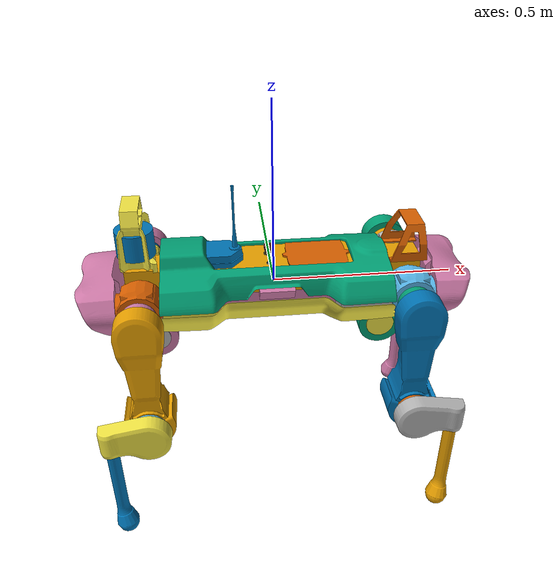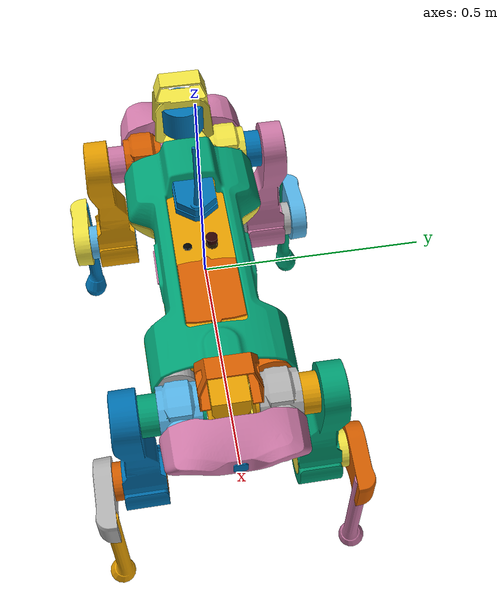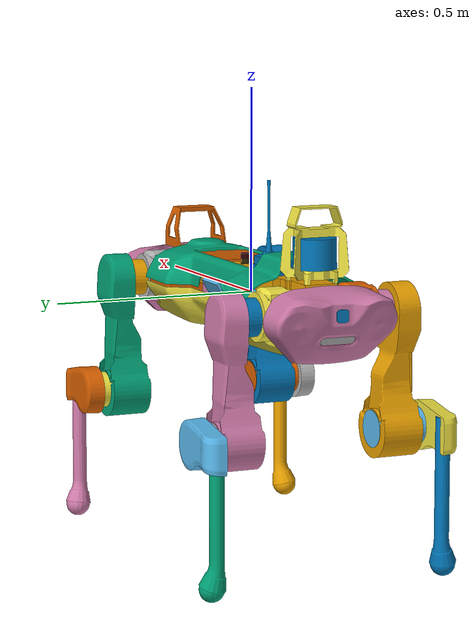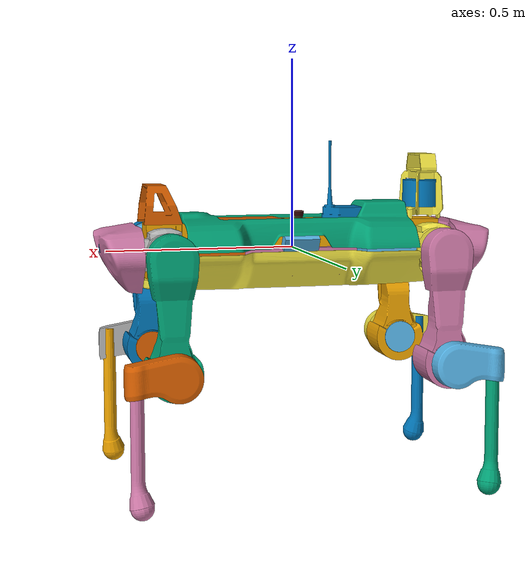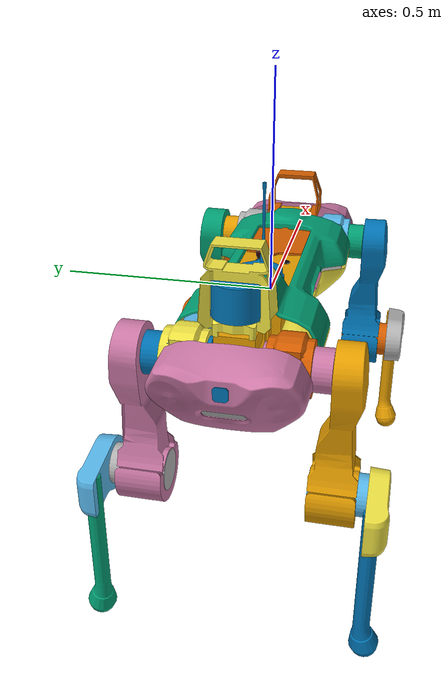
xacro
<?xml version="1.0"?>
<robot xmlns:xacro="http://www.ros.org/wiki/xacro"  name="anymal">

    <xacro:arg name="remove_shank_collisions" default="False"/>
    <xacro:property name="remove_shank_collisions" default="$(arg remove_shank_collisions)"/>

    <xacro:include filename="anymal.urdf.xacro" />
    <xacro:include filename="anymal_gazebo.xacro" />
    <xacro:include filename="materials.xacro" />
    <xacro:include filename="inertial_macros.xacro" />
    <xacro:include filename="lidar.xacro" />

</robot>

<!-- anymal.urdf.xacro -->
<!--   Copyright 2020 ANYbotics, https://www.anybotics.com                               -->
<!-- This file contains the description of the ANYmal C robot. -->
<robot xmlns:xacro="http://www.ros.org/wiki/xacro" name='anymal'>
    <!-- Base link -->
    <link name="base">
        <visual>
            <origin rpy="0 0 0" xyz="0 0 0"/>
            <geometry>
                <mesh filename="file://$(find anymal_c_simple_description)/meshes/base.dae" scale="1.0 1.0 1.0"/>
            </geometry>
        </visual>
        <collision>
            <origin rpy="0 0 0" xyz="0 0 0"/>
            <geometry>
                <box size="0.58 0.14 0.18"/>
            </geometry>
        </collision>
        <collision>
            <origin rpy="0 1.57079632679 0" xyz="0.2175 0.07 0"/>
            <geometry>
                <cylinder length="0.145" radius="0.09"/>
            </geometry>
        </collision>
        <collision>
            <origin rpy="0 1.57079632679 0" xyz="-0.2175 0.07 0"/>
            <geometry>
                <cylinder length="0.145" radius="0.09"/>
            </geometry>
        </collision>
        <collision>
            <origin rpy="0 1.57079632679 0" xyz="0.2175 -0.07 0"/>
            <geometry>
                <cylinder length="0.145" radius="0.09"/>
            </geometry>
        </collision>
        <collision>
            <origin rpy="0 1.57079632679 0" xyz="-0.2175 -0.07 0"/>
            <geometry>
                <cylinder length="0.145" radius="0.09"/>
            </geometry>
        </collision>
        <!-- Shell self filtering -->
        <self_filter>
            <origin rpy="0 0 0" xyz="0 0 0"/>
            <geometry>
                <box size="1.05 0.5 0.5"/>
            </geometry>
        </self_filter>
    </link>
    <!-- Fixed joint to add dummy inertia link -->
    <joint name="base_to_base_inertia" type="fixed">
        <parent link="base"/>
        <child link="base_inertia"/>
        <origin rpy="0 0 0" xyz="0 0 0"/>
    </joint>
    <!-- Dummy inertia link, because KDL cannot have inertia on the base link -->
    <link name="base_inertia">
        <inertial>
            <origin rpy="0 0 0" xyz="-0.018 -0.002 0.024"/>
            <mass value="6.222"/>
            <inertia ixx="0.017938806" ixy="0.00387963" ixz="0.001500772" iyy="0.370887745" iyz="6.8963e-05" izz="0.372497653"/>
        </inertial>
    </link>
    <!-- Fixed joint base topshell -->
    <joint name="base_top_shell" type="fixed">
        <parent link="base"/>
        <child link="top_shell"/>
        <origin rpy="0 0 0" xyz="0 0 0"/>
    </joint>
    <!-- Top shell link -->
    <link name="top_shell">
        <visual>
            <origin rpy="0 0 0" xyz="0 0 0"/>
            <geometry>
                <mesh filename="file://$(find anymal_c_simple_description)/meshes/top_shell.dae" scale="1.0 1.0 1.0"/>
            </geometry>
        </visual>
        <inertial>
            <origin rpy="0 0 0" xyz="-0.00777 -0.00013 0.06523"/>
            <mass value="0.534"/>
            <inertia ixx="0.00664789486" ixy="1.247923e-05" ixz="0.00053990097" iyy="0.02587392411" iyz="3.7614e-07" izz="0.03152303792"/>
        </inertial>
    </link>
    <!-- Fixed joint base topshell -->
    <joint name="base_bottom_shell" type="fixed">
        <parent link="base"/>
        <child link="bottom_shell"/>
        <origin rpy="0 0 0" xyz="0 0 0"/>
    </joint>
    <!-- Bottom shell link -->
    <link name="bottom_shell">
        <visual>
            <origin rpy="0 0 0" xyz="0 0 0"/>
            <geometry>
                <mesh filename="file://$(find anymal_c_simple_description)/meshes/bottom_shell.dae" scale="1.0 1.0 1.0"/>
            </geometry>
        </visual>
        <inertial>
            <origin rpy="0 0 0" xyz="-0.00333 1e-05 -0.07705"/>
            <mass value="1.15"/>
            <inertia ixx="0.00927353677" ixy="5.41222e-06" ixz="9.039821e-05" iyy="0.06134388239" iyz="2.3042e-07" izz="0.06853531465"/>
        </inertial>
    </link>
    <!-- Fixed joint base remote -->
    <joint name="base_remote" type="fixed">
        <parent link="base"/>
        <child link="remote"/>
        <origin rpy="0 0 0" xyz="0 0 0"/>
    </joint>
    <!-- Remote link -->
    <link name="remote">
        <visual>
            <origin rpy="0 0 0" xyz="0 0 0"/>
            <geometry>
                <mesh filename="file://$(find anymal_c_simple_description)/meshes/remote.dae" scale="1.0 1.0 1.0"/>
            </geometry>
        </visual>
        <inertial>
            <origin rpy="0 0 0" xyz="-0.171 0.002 0.096"/>
            <mass value="0.3262"/>
            <inertia ixx="0.000528486" ixy="4.547e-05" ixz="1.10327e-05" iyy="0.001165035" iyz="7.4e-07" izz="0.00124026"/>
        </inertial>
    </link>
    <!-- Fixed joint base handle -->
    <joint name="base_handle" type="fixed">
        <parent link="base"/>
        <child link="handle"/>
        <origin rpy="0 0 0" xyz="0 0 0"/>
    </joint>
    <!-- Handle link -->
    <link name="handle">
        <visual>
            <origin rpy="0 0 0" xyz="0 0 0"/>
            <geometry>
                <mesh filename="file://$(find anymal_c_simple_description)/meshes/handle.dae" scale="1.0 1.0 1.0"/>
            </geometry>
        </visual>
        <inertial>
            <origin rpy="0 0 0" xyz="0.37801 0.0 0.1372"/>
            <mass value="0.314"/>
            <inertia ixx="0.001525739" ixy="0.0" ixz="6.272e-05" iyy="0.00071584" iyz="1e-09" izz="0.001164779"/>
        </inertial>
    </link>
    <!-- Fixed joint base face -->
    <joint name="base_face_front" type="fixed">
        <parent link="base"/>
        <child link="face_front"/>
        <origin rpy="0 0 -0.0" xyz="0.4145 0 0"/>
    </joint>
    <!-- Shell link -->
    <link name="face_front">
        <visual>
            <origin rpy="0 0 0" xyz="0 0 0"/>
            <geometry>
                <mesh filename="file://$(find anymal_c_simple_description)/meshes/face.dae" scale="1.0 1.0 1.0"/>
            </geometry>
        </visual>
        <collision>
            <origin rpy="0 0 0" xyz="0.055 0 0"/>
            <geometry>
                <box size="0.11 0.14 0.18"/>
            </geometry>
        </collision>
        <collision>
            <origin rpy="0 1.57079632679 0" xyz="0.055 0.07 0"/>
            <geometry>
                <cylinder length="0.11" radius="0.09"/>
            </geometry>
        </collision>
        <collision>
            <origin rpy="0 1.57079632679 0" xyz="0.055 -0.07 0"/>
            <geometry>
                <cylinder length="0.11" radius="0.09"/>
            </geometry>
        </collision>
        <inertial>
            <origin rpy="0 0 0" xyz="0.042 -0.001 0.004"/>
            <mass value="0.73"/>
            <inertia ixx="0.005238611" ixy="1.7609e-05" ixz="7.2167e-05" iyy="0.002643098" iyz="1.9548e-05" izz="0.004325938"/>
        </inertial>
    </link>
    <!-- Camera joint -->
    <!-- Is located between the two back screw holes at ground level. -->
    <joint name="face_front_to_depth_camera_front_camera" type="fixed">
        <parent link="face_front"/>
        <child link="depth_camera_front_camera"/>
        <origin rpy="0.0 0.523598775598 0" xyz="0.04715 0.0 -0.0292"/>
    </joint>
    <!-- Camera link -->
    <link name="depth_camera_front_camera">
        <visual>
            <origin rpy="0 0 0" xyz="0.0 0.0 0.0"/>
            <geometry>
                <mesh filename="file://$(find anymal_c_simple_description)/meshes/depth_camera.dae" scale="1.0 1.0 1.0"/>
            </geometry>
        </visual>
        <inertial>
            <origin rpy="0 0 0" xyz="-0.021 -0.002 0.025"/>
            <mass value="0.16043"/>
            <inertia ixx="0.000637051" ixy="0.000484569" ixz="0.000424211" iyy="0.000929402" iyz="5.138e-06" izz="0.000484569"/>
        </inertial>
    </link>
    <!-- Camera parent joint -->
    <!-- Frame lies on the left ir camera according to any_realsense2_camera urdf. -->
    <joint name="depth_camera_front_camera_to_camera_parent" type="fixed">
        <parent link="depth_camera_front_camera"/>
        <child link="depth_camera_front_camera_parent"/>
        <origin rpy="0.0 0.0 0.0" xyz="0.0255 0.0175 0.0"/>
    </joint>
    <!-- Camera parent link -->
    <link name="depth_camera_front_camera_parent"/>
    <!-- Depth optical frame joint -->
    <joint name="depth_camera_front_camera_parent_to_depth_optical_frame" type="fixed">
        <parent link="depth_camera_front_camera_parent"/>
        <child link="depth_camera_front_depth_optical_frame"/>
        <origin rpy="-1.57079632679 0.0 -1.57079632679" xyz="0.0 0.0 0.0"/>
    </joint>
    <!-- Depth optical frame link -->
    <link name="depth_camera_front_depth_optical_frame"/>
    <!-- Camera color frame joint -->
    <joint name="depth_camera_front_camera_parent_to_color_frame" type="fixed">
        <parent link="depth_camera_front_camera_parent"/>
        <child link="depth_camera_front_color_frame"/>
        <origin rpy="0 0 0" xyz="0 0.015 0"/>
    </joint>
    <!-- Camera color frame link -->
    <link name="depth_camera_front_color_frame"/>
    <!-- Camera color optical joint -->
    <joint name="depth_camera_front_color_frame_to_color_optical_frame" type="fixed">
        <parent link="depth_camera_front_color_frame"/>
        <child link="depth_camera_front_color_optical_frame"/>
        <origin rpy="-1.57079632679 0.0 -1.57079632679" xyz="0.0 0.0 0.0"/>
    </joint>
    <!-- Camera color optical link -->
    <link name="depth_camera_front_color_optical_frame"/>
    <!-- Camera joint -->
    <!-- Is located in the center of the mounting points. -->
    <joint name="face_front_to_wide_angle_camera_front_camera" type="fixed">
        <parent link="face_front"/>
        <child link="wide_angle_camera_front_camera"/>
        <origin rpy="0 0 0" xyz="0.09850 0.0 0.01497"/>
    </joint>
    <!-- Camera link -->
    <link name="wide_angle_camera_front_camera">
        <visual>
            <origin rpy="0 0 0" xyz="0.0 0.0 0.0"/>
            <geometry>
                <mesh filename="file://$(find anymal_c_simple_description)/meshes/wide_angle_camera.dae" scale="1.0 1.0 1.0"/>
            </geometry>
        </visual>
        <inertial>
            <origin rpy="0 0 0" xyz="-0.053 -0.001 0.025"/>
            <mass value="0.287"/>
            <inertia ixx="0.000559232" ixy="1.6875e-05" ixz="0.000423761" iyy="0.000946504" iyz="1.3234e-07" izz="0.000493052"/>
        </inertial>
    </link>
    <!-- Camera parent joint -->
    <joint name="wide_angle_camera_front_camera_to_camera_parent" type="fixed">
        <parent link="wide_angle_camera_front_camera"/>
        <child link="wide_angle_camera_front_camera_parent"/>
        <origin rpy="-1.57079632679 0.0 -1.57079632679" xyz="0.0 0.0 0.0"/>
    </joint>
    <!-- Camera parent link -->
    <link name="wide_angle_camera_front_camera_parent"/>
    <!-- Fixed joint base face -->
    <joint name="base_face_rear" type="fixed">
        <parent link="base"/>
        <child link="face_rear"/>
        <origin rpy="0 0 3.14159265359" xyz="-0.4145 0 0"/>
    </joint>
    <!-- Shell link -->
    <link name="face_rear">
        <visual>
            <origin rpy="0 0 0" xyz="0 0 0"/>
            <geometry>
                <mesh filename="file://$(find anymal_c_simple_description)/meshes/face.dae" scale="1.0 1.0 1.0"/>
            </geometry>
        </visual>
        <collision>
            <origin rpy="0 0 0" xyz="0.055 0 0"/>
            <geometry>
                <box size="0.11 0.14 0.18"/>
            </geometry>
        </collision>
        <collision>
            <origin rpy="0 1.57079632679 0" xyz="0.055 0.07 0"/>
            <geometry>
                <cylinder length="0.11" radius="0.09"/>
            </geometry>
        </collision>
        <collision>
            <origin rpy="0 1.57079632679 0" xyz="0.055 -0.07 0"/>
            <geometry>
                <cylinder length="0.11" radius="0.09"/>
            </geometry>
        </collision>
        <inertial>
            <origin rpy="0 0 0" xyz="0.042 -0.001 0.004"/>
            <mass value="0.73"/>
            <inertia ixx="0.005238611" ixy="1.7609e-05" ixz="7.2167e-05" iyy="0.002643098" iyz="1.9548e-05" izz="0.004325938"/>
        </inertial>
    </link>
    <!-- Camera joint -->
    <!-- Is located between the two back screw holes at ground level. -->
    <joint name="face_rear_to_depth_camera_rear_camera" type="fixed">
        <parent link="face_rear"/>
        <child link="depth_camera_rear_camera"/>
        <origin rpy="0.0 0.523598775598 0" xyz="0.04715 0.0 -0.0292"/>
    </joint>
    <!-- Camera link -->
    <link name="depth_camera_rear_camera">
        <visual>
            <origin rpy="0 0 0" xyz="0.0 0.0 0.0"/>
            <geometry>
                <mesh filename="file://$(find anymal_c_simple_description)/meshes/depth_camera.dae" scale="1.0 1.0 1.0"/>
            </geometry>
        </visual>
        <inertial>
            <origin rpy="0 0 0" xyz="-0.021 -0.002 0.025"/>
            <mass value="0.16043"/>
            <inertia ixx="0.000637051" ixy="0.000484569" ixz="0.000424211" iyy="0.000929402" iyz="5.138e-06" izz="0.000484569"/>
        </inertial>
    </link>
    <!-- Camera parent joint -->
    <!-- Frame lies on the left ir camera according to any_realsense2_camera urdf. -->
    <joint name="depth_camera_rear_camera_to_camera_parent" type="fixed">
        <parent link="depth_camera_rear_camera"/>
        <child link="depth_camera_rear_camera_parent"/>
        <origin rpy="0.0 0.0 0.0" xyz="0.0255 0.0175 0.0"/>
    </joint>
    <!-- Camera parent link -->
    <link name="depth_camera_rear_camera_parent"/>
    <!-- Depth optical frame joint -->
    <joint name="depth_camera_rear_camera_parent_to_depth_optical_frame" type="fixed">
        <parent link="depth_camera_rear_camera_parent"/>
        <child link="depth_camera_rear_depth_optical_frame"/>
        <origin rpy="-1.57079632679 0.0 -1.57079632679" xyz="0.0 0.0 0.0"/>
    </joint>
    <!-- Depth optical frame link -->
    <link name="depth_camera_rear_depth_optical_frame"/>
    <!-- Camera color frame joint -->
    <joint name="depth_camera_rear_camera_parent_to_color_frame" type="fixed">
        <parent link="depth_camera_rear_camera_parent"/>
        <child link="depth_camera_rear_color_frame"/>
        <origin rpy="0 0 0" xyz="0 0.015 0"/>
    </joint>
    <!-- Camera color frame link -->
    <link name="depth_camera_rear_color_frame"/>
    <!-- Camera color optical joint -->
    <joint name="depth_camera_rear_color_frame_to_color_optical_frame" type="fixed">
        <parent link="depth_camera_rear_color_frame"/>
        <child link="depth_camera_rear_color_optical_frame"/>
        <origin rpy="-1.57079632679 0.0 -1.57079632679" xyz="0.0 0.0 0.0"/>
    </joint>
    <!-- Camera color optical link -->
    <link name="depth_camera_rear_color_optical_frame"/>
    <!-- Camera joint -->
    <!-- Is located in the center of the mounting points. -->
    <joint name="face_rear_to_wide_angle_camera_rear_camera" type="fixed">
        <parent link="face_rear"/>
        <child link="wide_angle_camera_rear_camera"/>
        <origin rpy="0 0 0" xyz="0.09850 0.0 0.01497"/>
    </joint>
    <!-- Camera link -->
    <link name="wide_angle_camera_rear_camera">
        <visual>
            <origin rpy="0 0 0" xyz="0.0 0.0 0.0"/>
            <geometry>
                <mesh filename="file://$(find anymal_c_simple_description)/meshes/wide_angle_camera.dae" scale="1.0 1.0 1.0"/>
            </geometry>
        </visual>
        <inertial>
            <origin rpy="0 0 0" xyz="-0.053 -0.001 0.025"/>
            <mass value="0.287"/>
            <inertia ixx="0.000559232" ixy="1.6875e-05" ixz="0.000423761" iyy="0.000946504" iyz="1.3234e-07" izz="0.000493052"/>
        </inertial>
    </link>
    <!-- Camera parent joint -->
    <joint name="wide_angle_camera_rear_camera_to_camera_parent" type="fixed">
        <parent link="wide_angle_camera_rear_camera"/>
        <child link="wide_angle_camera_rear_camera_parent"/>
        <origin rpy="-1.57079632679 0.0 -1.57079632679" xyz="0.0 0.0 0.0"/>
    </joint>
    <!-- Camera parent link -->
    <link name="wide_angle_camera_rear_camera_parent"/>
    <!-- Fixed joint base battery -->
    <joint name="base_battery" type="fixed">
        <parent link="base"/>
        <child link="battery"/>
        <origin rpy="0 0 0" xyz="0 0 0"/>
    </joint>
    <!-- Shell link -->
    <link name="battery">
        <visual>
            <origin rpy="0 0 0" xyz="0 0 0"/>
            <geometry>
                <mesh filename="file://$(find anymal_c_simple_description)/meshes/battery.dae" scale="1.0 1.0 1.0"/>
            </geometry>
        </visual>
        <inertial>
            <origin rpy="0 0 0" xyz="-0.00067 -0.00023 -0.03362"/>
            <mass value="5.53425"/>
            <inertia ixx="0.00749474794" ixy="0.00016686282" ixz="7.82763e-05" iyy="0.0722338913" iyz="1.42902e-06" izz="0.07482717535"/>
        </inertial>
    </link>
    <!-- Fixed joint to add docking  -->
    <joint name="base_to_docking_hatch_cover" type="fixed">
        <parent link="base"/>
        <child link="docking_hatch_cover"/>
        <origin rpy="0 0 0" xyz="0.343 0.0 -0.07"/>
    </joint>
    <!-- Hatch cover link -->
    <link name="docking_hatch_cover">
        <!--  TODO(fgiraldez): add visual    -->
        <inertial>
            <origin rpy="0 0 0" xyz="-0.003 0.0 0.005"/>
            <mass value="0.065"/>
            <inertia ixx="0.00063283" ixy="0.0" ixz="3.45e-07" iyy="0.00110971" iyz="0.0" izz="0.00171883"/>
        </inertial>
    </link>
    <link name="imu_link">
        <visual>
            <origin rpy="0 0 0" xyz="0 0 0.005"/>
            <geometry>
                <box size="0.024 0.024 0.01"/>
            </geometry>
        </visual>
        <collision>
            <origin rpy="0 0 0" xyz="0 0 0.005"/>
            <geometry>
                <box size="0.024 0.024 0.01"/>
            </geometry>
        </collision>
        <inertial>
            <mass value="0.01"/>
            <origin xyz="0 0 0"/>
            <inertia ixx="5.63333333333e-07" ixy="0.0" ixz="0.0" iyy="9.6e-07" iyz="0.0" izz="5.63333333333e-07"/>
        </inertial>
    </link>
    <joint name="imu_joint" type="fixed">
        <parent link="base"/>
        <child link="imu_link"/>
        <origin rpy="0.0 0.0 1.57079632679" xyz="0.2488 0.00835 0.04628"/>
    </joint>
    <!-- Camera joint -->
    <!-- Is located between the two back screw holes at ground level. -->
    <joint name="base_to_depth_camera_left_camera" type="fixed">
        <parent link="base"/>
        <child link="depth_camera_left_camera"/>
        <origin rpy="0.0 0.523598775598 1.57079632679" xyz="0.0 0.07646 0.02905"/>
    </joint>
    <!-- Camera link -->
    <link name="depth_camera_left_camera">
        <visual>
            <origin rpy="0 0 0" xyz="0.0 0.0 0.0"/>
            <geometry>
                <mesh filename="file://$(find anymal_c_simple_description)/meshes/depth_camera.dae" scale="1.0 1.0 1.0"/>
            </geometry>
        </visual>
        <inertial>
            <origin rpy="0 0 0" xyz="-0.021 -0.002 0.025"/>
            <mass value="0.16043"/>
            <inertia ixx="0.000637051" ixy="0.000484569" ixz="0.000424211" iyy="0.000929402" iyz="5.138e-06" izz="0.000484569"/>
        </inertial>
    </link>
    <!-- Camera parent joint -->
    <!-- Frame lies on the left ir camera according to any_realsense2_camera urdf. -->
    <joint name="depth_camera_left_camera_to_camera_parent" type="fixed">
        <parent link="depth_camera_left_camera"/>
        <child link="depth_camera_left_camera_parent"/>
        <origin rpy="0.0 0.0 0.0" xyz="0.0255 0.0175 0.0"/>
    </joint>
    <!-- Camera parent link -->
    <link name="depth_camera_left_camera_parent"/>
    <!-- Depth optical frame joint -->
    <joint name="depth_camera_left_camera_parent_to_depth_optical_frame" type="fixed">
        <parent link="depth_camera_left_camera_parent"/>
        <child link="depth_camera_left_depth_optical_frame"/>
        <origin rpy="-1.57079632679 0.0 -1.57079632679" xyz="0.0 0.0 0.0"/>
    </joint>
    <!-- Depth optical frame link -->
    <link name="depth_camera_left_depth_optical_frame"/>
    <!-- Camera color frame joint -->
    <joint name="depth_camera_left_camera_parent_to_color_frame" type="fixed">
        <parent link="depth_camera_left_camera_parent"/>
        <child link="depth_camera_left_color_frame"/>
        <origin rpy="0 0 0" xyz="0 0.015 0"/>
    </joint>
    <!-- Camera color frame link -->
    <link name="depth_camera_left_color_frame"/>
    <!-- Camera color optical joint -->
    <joint name="depth_camera_left_color_frame_to_color_optical_frame" type="fixed">
        <parent link="depth_camera_left_color_frame"/>
        <child link="depth_camera_left_color_optical_frame"/>
        <origin rpy="-1.57079632679 0.0 -1.57079632679" xyz="0.0 0.0 0.0"/>
    </joint>
    <!-- Camera color optical link -->
    <link name="depth_camera_left_color_optical_frame"/>
    <!-- Camera joint -->
    <!-- Is located between the two back screw holes at ground level. -->
    <joint name="base_to_depth_camera_right_camera" type="fixed">
        <parent link="base"/>
        <child link="depth_camera_right_camera"/>
        <origin rpy="0.0 0.523598775598 -1.57079632679" xyz="0.0 -0.07646 0.02905"/>
    </joint>
    <!-- Camera link -->
    <link name="depth_camera_right_camera">
        <visual>
            <origin rpy="0 0 0" xyz="0.0 0.0 0.0"/>
            <geometry>
                <mesh filename="file://$(find anymal_c_simple_description)/meshes/depth_camera.dae" scale="1.0 1.0 1.0"/>
            </geometry>
        </visual>
        <inertial>
            <origin rpy="0 0 0" xyz="-0.021 -0.002 0.025"/>
            <mass value="0.16043"/>
            <inertia ixx="0.000637051" ixy="0.000484569" ixz="0.000424211" iyy="0.000929402" iyz="5.138e-06" izz="0.000484569"/>
        </inertial>
    </link>
    <!-- Camera parent joint -->
    <!-- Frame lies on the left ir camera according to any_realsense2_camera urdf. -->
    <joint name="depth_camera_right_camera_to_camera_parent" type="fixed">
        <parent link="depth_camera_right_camera"/>
        <child link="depth_camera_right_camera_parent"/>
        <origin rpy="0.0 0.0 0.0" xyz="0.0255 0.0175 0.0"/>
    </joint>
    <!-- Camera parent link -->
    <link name="depth_camera_right_camera_parent"/>
    <!-- Depth optical frame joint -->
    <joint name="depth_camera_right_camera_parent_to_depth_optical_frame" type="fixed">
        <parent link="depth_camera_right_camera_parent"/>
        <child link="depth_camera_right_depth_optical_frame"/>
        <origin rpy="-1.57079632679 0.0 -1.57079632679" xyz="0.0 0.0 0.0"/>
    </joint>
    <!-- Depth optical frame link -->
    <link name="depth_camera_right_depth_optical_frame"/>
    <!-- Camera color frame joint -->
    <joint name="depth_camera_right_camera_parent_to_color_frame" type="fixed">
        <parent link="depth_camera_right_camera_parent"/>
        <child link="depth_camera_right_color_frame"/>
        <origin rpy="0 0 0" xyz="0 0.015 0"/>
    </joint>
    <!-- Camera color frame link -->
    <link name="depth_camera_right_color_frame"/>
    <!-- Camera color optical joint -->
    <joint name="depth_camera_right_color_frame_to_color_optical_frame" type="fixed">
        <parent link="depth_camera_right_color_frame"/>
        <child link="depth_camera_right_color_optical_frame"/>
        <origin rpy="-1.57079632679 0.0 -1.57079632679" xyz="0.0 0.0 0.0"/>
    </joint>
    <!-- Camera color optical link -->
    <link name="depth_camera_right_color_optical_frame"/>
    <!-- parent to cage joint, located between mounting plate on trunk and the cage -->
    <joint name="base_to_lidar_cage" type="fixed">
        <parent link="base"/>
        <child link="lidar_cage"/>
        <origin rpy="0 0 0" xyz="-0.364 0.0 0.0735"/>
    </joint>
    <!-- Velodyne cage link -->
    <link name="lidar_cage">
        <visual>
            <origin rpy="0.0 0.0 0.0" xyz="0.0 0.0 0.0"/>
            <geometry>
                <mesh filename="file://$(find anymal_c_simple_description)/meshes/lidar_cage.dae" scale="1.0 1.0 1.0"/>
            </geometry>
        </visual>
        <collision>
            <origin rpy="0 0 0" xyz="0 0 0.06"/>
            <geometry>
                <cylinder length="0.12" radius="0.07"/>
            </geometry>
        </collision>
        <inertial>
            <origin rpy="0.0 0.0 0.0" xyz="0.002 0.0 0.099"/>
            <mass value="0.545"/>
            <inertia ixx="0.003156254" ixy="0.0" ixz="1.0992e-05" iyy="0.002357216" iyz="0.0" izz="0.001326455"/>
        </inertial>
    </link>
    <!-- parent to sensor joint -->
    <joint name="lidar_cage_to_lidar" type="fixed">
        <parent link="lidar_cage"/>
        <child link="lidar"/>
        <origin rpy="0.0 0.0 -1.57079632679" xyz="0.0 0.0 0.0687"/>
    </joint>
    <!-- Velodyne sensor link -->
    <link name="lidar">
        <inertial>
            <origin rpy="0.0 0.0 0.0" xyz="-0.012 0.001 -0.008"/>
            <mass value="0.695"/>
            <inertia ixx="0.000846765" ixy="6.9565e-05" ixz="0.00027111" iyy="0.001367583" iyz="5.8984e-05" izz="0.001363673"/>
        </inertial>
        <visual>
            <origin xyz="0 0 0"/>
            <geometry>
                <mesh filename="file://$(find anymal_c_simple_description)/meshes/lidar.dae"/>
            </geometry>
        </visual>
    </link>
    <!-- joint base HAA -->
    <joint name="base_LF_HAA" type="fixed">
        <parent link="base"/>
        <child link="LF_HAA"/>
        <origin rpy="2.61799387799 0 0.0" xyz="0.2999 0.104 0.0"/>
    </joint>
    <!-- Drive link -->
    <link name="LF_HAA">
        <visual>
            <origin rpy="0 0 0" xyz="0 0 0"/>
            <geometry>
                <mesh filename="file://$(find anymal_c_simple_description)/meshes/drive.dae" scale="1.0 1.0 1.0"/>
            </geometry>
        </visual>
        <inertial>
            <origin rpy="0 0 0" xyz="-0.063 7e-05 0.00046"/>
            <mass value="2.04"/>
            <inertia ixx="0.001053013" ixy="4.527e-05" ixz="8.855e-05" iyy="0.001805509" iyz="9.909e-05" izz="0.001765827"/>
        </inertial>
    </link>
    <!-- joint Drive output -->
    <joint name="LF_HAA_joint" type="revolute">
        <parent link="LF_HAA"/>
        <child link="LF_HIP"/>
        <origin rpy="0 0 0" xyz="0 0 0"/>
        <axis xyz="1 0 0"/>
        <limit effort="80.0" lower="-0.72" upper="0.49" velocity="7.5"/>
        <dynamics damping="0.0" friction="0.0"/>
    </joint>
    <!-- Drive output link -->
    <link name="LF_HIP">
        <inertial>
            <origin rpy="0 0 0" xyz="0 0 0"/>
            <mass value="0.001"/>
            <inertia ixx="0.000001" ixy="0.0" ixz="0.0" iyy="0.000001" iyz="0.0" izz="0.000001"/>
        </inertial>
    </link>
    <!-- joint HAA hip -->
    <joint name="LF_HIP_LF_hip_fixed" type="fixed">
        <parent link="LF_HIP"/>
        <child link="LF_hip_fixed"/>
        <origin rpy="-2.61799387799 0 0.0" xyz="0 0 0"/>
    </joint>
    <!-- Hip link -->
    <link name="LF_hip_fixed">
        <visual>
            <origin rpy="0 0 0.0" xyz="0 0 0"/>
            <geometry>
                <mesh filename="file://$(find anymal_c_simple_description)/meshes/hip_l.dae" scale="1.0 1.0 1.0"/>
            </geometry>
        </visual>
        <inertial>
            <origin rpy="0 0 0" xyz="0.048 0.008 -0.003"/>
            <mass value="0.74"/>
            <inertia ixx="0.001393106" ixy="8.4012e-05" ixz="2.3378e-05" iyy="0.003798579" iyz="7.1319e-05" izz="0.003897509"/>
        </inertial>
    </link>
    <!-- joint hip HFE -->
    <joint name="LF_hip_fixed_LF_HFE" type="fixed">
        <parent link="LF_hip_fixed"/>
        <child link="LF_HFE"/>
        <origin rpy="0 0 1.57079632679" xyz="0.0599 0.08381 0.0"/>
    </joint>
    <!-- Drive link -->
    <link name="LF_HFE">
        <visual>
            <origin rpy="0 0 0" xyz="0 0 0"/>
            <geometry>
                <mesh filename="file://$(find anymal_c_simple_description)/meshes/drive.dae" scale="1.0 1.0 1.0"/>
            </geometry>
        </visual>
        <collision>
            <origin rpy="0 1.57079632679 0" xyz="-0.07 0 0"/>
            <geometry>
                <cylinder length="0.14" radius="0.05"/>
            </geometry>
        </collision>
        <inertial>
            <origin rpy="0 0 0" xyz="-0.063 7e-05 0.00046"/>
            <mass value="2.04"/>
            <inertia ixx="0.001053013" ixy="4.527e-05" ixz="8.855e-05" iyy="0.001805509" iyz="9.909e-05" izz="0.001765827"/>
        </inertial>
    </link>
    <!-- joint Drive output -->
    <joint name="LF_HFE_joint" type="revolute">
        <parent link="LF_HFE"/>
        <child link="LF_THIGH"/>
        <origin rpy="0 0 0" xyz="0 0 0"/>
        <axis xyz="1 0 0"/>
        <limit effort="80.0" lower="-9.42477796077" upper="9.42477796077" velocity="7.5"/>
        <dynamics damping="0.0" friction="0.0"/>
    </joint>
    <!-- Drive output link -->
    <link name="LF_THIGH">
        <inertial>
            <origin rpy="0 0 0" xyz="0 0 0"/>
            <mass value="0.001"/>
            <inertia ixx="0.000001" ixy="0.0" ixz="0.0" iyy="0.000001" iyz="0.0" izz="0.000001"/>
        </inertial>
    </link>
    <!-- joint HFE thigh -->
    <joint name="LF_THIGH_LF_thigh_fixed" type="fixed">
        <parent link="LF_THIGH"/>
        <child link="LF_thigh_fixed"/>
        <origin rpy="0 0 -1.57079632679" xyz="0 0 0"/>
    </joint>
    <!-- Thigh link -->
    <link name="LF_thigh_fixed">
        <visual>
            <origin rpy="0 0 0.0" xyz="0 0 0"/>
            <geometry>
                <mesh filename="file://$(find anymal_c_simple_description)/meshes/thigh.dae" scale="1.0 1.0 1.0"/>
            </geometry>
        </visual>
        <!-- Thigh collision -->
        <collision>
            <origin rpy="1.57079632679 0 0" xyz="0 0.04 0"/>
            <geometry>
                <cylinder length="0.08" radius="0.065"/>
            </geometry>
        </collision>
        <collision>
            <origin rpy="0 0 0" xyz="0 0.03 -0.1413135"/>
            <geometry>
                <box size="0.075 0.06 0.282627"/>
            </geometry>
        </collision>
        <inertial>
            <origin rpy="0 0 0" xyz="0.0 0.018 -0.169"/>
            <mass value="1.03"/>
            <inertia ixx="0.018644469" ixy="5.2e-08" ixz="1.0157e-05" iyy="0.019312599" iyz="0.002520077" izz="0.002838361"/>
        </inertial>
    </link>
    <!-- joint thigh KFE -->
    <joint name="LF_thigh_fixed_LF_KFE" type="fixed">
        <parent link="LF_thigh_fixed"/>
        <child link="LF_KFE"/>
        <origin rpy="0 0 1.57079632679" xyz="0.0 0.1003 -0.285"/>
    </joint>
    <!-- Drive link -->
    <link name="LF_KFE">
        <visual>
            <origin rpy="0 0 0" xyz="0 0 0"/>
            <geometry>
                <mesh filename="file://$(find anymal_c_simple_description)/meshes/drive.dae" scale="1.0 1.0 1.0"/>
            </geometry>
        </visual>
        <collision>
            <origin rpy="0 1.57079632679 0" xyz="-0.07 0 0"/>
            <geometry>
                <cylinder length="0.14" radius="0.05"/>
            </geometry>
        </collision>
        <inertial>
            <origin rpy="0 0 0" xyz="-0.063 7e-05 0.00046"/>
            <mass value="2.04"/>
            <inertia ixx="0.001053013" ixy="4.527e-05" ixz="8.855e-05" iyy="0.001805509" iyz="9.909e-05" izz="0.001765827"/>
        </inertial>
    </link>
    <!-- joint Drive output -->
    <joint name="LF_KFE_joint" type="revolute">
        <parent link="LF_KFE"/>
        <child link="LF_SHANK"/>
        <origin rpy="0 0 0" xyz="0 0 0"/>
        <axis xyz="1 0 0"/>
        <limit effort="80.0" lower="-9.42477796077" upper="9.42477796077" velocity="7.5"/>
        <dynamics damping="0.0" friction="0.0"/>
    </joint>
    <!-- Drive output link -->
    <link name="LF_SHANK">
        <inertial>
            <origin rpy="0 0 0" xyz="0 0 0"/>
            <mass value="0.001"/>
            <inertia ixx="0.000001" ixy="0.0" ixz="0.0" iyy="0.000001" iyz="0.0" izz="0.000001"/>
        </inertial>
    </link>
    <!-- joint KFE shank -->
    <joint name="LF_shank_LF_shank_fixed" type="fixed">
        <parent link="LF_SHANK"/>
        <child link="LF_shank_fixed"/>
        <origin rpy="0 0 -1.57079632679" xyz="0 0 0"/>
    </joint>
    <!-- Shank link -->
    <link name="LF_shank_fixed">
        <visual>
            <origin rpy="0 0 0.0" xyz="0 0 0"/>
            <geometry>
                <mesh filename="file://$(find anymal_c_simple_description)/meshes/shank_l.dae" scale="1.0 1.0 1.0"/>
            </geometry>
        </visual>
        <!-- Shank collision -->
        <collision>
            <origin rpy="1.57079632679 0 0" xyz="0 0.02 0"/>
            <geometry>
                <cylinder length="0.04" radius="0.06"/>
            </geometry>
        </collision>
        <collision>
            <origin rpy="1.57079632679 0 0" xyz="0.057499 0.02 0"/>
            <geometry>
                <box size="0.114998 0.0675 0.04"/>
            </geometry>
        </collision>
        <inertial>
            <origin rpy="0 0 0" xyz="0.03463 0.00688 0.00098"/>
            <mass value="0.33742"/>
            <inertia ixx="0.00032748005" ixy="2.142561e-05" ixz="1.33942e-05" iyy="0.00110974122" iyz="7.601e-08" izz="0.00089388521"/>
        </inertial>
    </link>
    <!-- Leg configurations: xx (knees bent inwards), xo (knees bent backwards) -->
    <!-- joint shank foot -->
    <joint name="LF_shank_fixed_LF_FOOT" type="fixed">
        <parent link="LF_shank_fixed"/>
        <child link="LF_FOOT"/>
        <origin rpy="0 0 0" xyz="0.08795 0.01305 -0.33797"/>
    </joint>
    <!-- Foot link -->
    <link name="LF_FOOT">
        <visual>
            <origin rpy="0 0 -0.785398163397" xyz="0 0 0"/>
            <geometry>
                <mesh filename="file://$(find anymal_c_simple_description)/meshes/foot.dae" scale="1.0 1.0 1.0"/>
            </geometry>
        </visual>
        <!-- Adapter collision -->
        <collision>
            <origin rpy="0 0 0" xyz="0 0 0.168985"/>
            <geometry>
                <cylinder length="0.282504" radius="0.0175"/>
            </geometry>
        </collision>
        <!-- Foot collision -->
        <collision>
            <origin xyz="0 0 0.0225"/>
            <geometry>
                <sphere radius="0.03"/>
            </geometry>
        </collision>
        <inertial>
            <origin rpy="0 0 0" xyz="0.00948 -0.00948 0.1468"/>
            <mass value="0.25"/>
            <inertia ixx="0.00317174097" ixy="2.63048e-06" ixz="6.815581e-05" iyy="0.00317174092" iyz="6.815583e-05" izz="8.319196e-05"/>
        </inertial>
    </link>
    <!-- joint base HAA -->
    <joint name="base_RF_HAA" type="fixed">
        <parent link="base"/>
        <child link="RF_HAA"/>
        <origin rpy="-2.61799387799 0 0.0" xyz="0.2999 -0.104 0.0"/>
    </joint>
    <!-- Drive link -->
    <link name="RF_HAA">
        <visual>
            <origin rpy="0 0 0" xyz="0 0 0"/>
            <geometry>
                <mesh filename="file://$(find anymal_c_simple_description)/meshes/drive.dae" scale="1.0 1.0 1.0"/>
            </geometry>
        </visual>
        <inertial>
            <origin rpy="0 0 0" xyz="-0.063 7e-05 0.00046"/>
            <mass value="2.04"/>
            <inertia ixx="0.001053013" ixy="4.527e-05" ixz="8.855e-05" iyy="0.001805509" iyz="9.909e-05" izz="0.001765827"/>
        </inertial>
    </link>
    <!-- joint Drive output -->
    <joint name="RF_HAA_joint" type="revolute">
        <parent link="RF_HAA"/>
        <child link="RF_HIP"/>
        <origin rpy="0 0 0" xyz="0 0 0"/>
        <axis xyz="1 0 0"/>
        <limit effort="80.0" lower="-0.49" upper="0.72" velocity="7.5"/>
        <dynamics damping="0.0" friction="0.0"/>
    </joint>
    <!-- Drive output link -->
    <link name="RF_HIP">
        <inertial>
            <origin rpy="0 0 0" xyz="0 0 0"/>
            <mass value="0.001"/>
            <inertia ixx="0.000001" ixy="0.0" ixz="0.0" iyy="0.000001" iyz="0.0" izz="0.000001"/>
        </inertial>
    </link>
    <!-- joint HAA hip -->
    <joint name="RF_HIP_RF_hip_fixed" type="fixed">
        <parent link="RF_HIP"/>
        <child link="RF_hip_fixed"/>
        <origin rpy="2.61799387799 0 0.0" xyz="0 0 0"/>
    </joint>
    <!-- Hip link -->
    <link name="RF_hip_fixed">
        <visual>
            <origin rpy="0 0 0.0" xyz="0 0 0"/>
            <geometry>
                <mesh filename="file://$(find anymal_c_simple_description)/meshes/hip_r.dae" scale="1.0 1.0 1.0"/>
            </geometry>
        </visual>
        <inertial>
            <origin rpy="0 0 0" xyz="0.048 -0.008 -0.003"/>
            <mass value="0.74"/>
            <inertia ixx="0.001393106" ixy="-8.4012e-05" ixz="2.3378e-05" iyy="0.003798579" iyz="-7.1319e-05" izz="0.003897509"/>
        </inertial>
    </link>
    <!-- joint hip HFE -->
    <joint name="RF_hip_fixed_RF_HFE" type="fixed">
        <parent link="RF_hip_fixed"/>
        <child link="RF_HFE"/>
        <origin rpy="0 0 -1.57079632679" xyz="0.0599 -0.08381 0.0"/>
    </joint>
    <!-- Drive link -->
    <link name="RF_HFE">
        <visual>
            <origin rpy="0 0 0" xyz="0 0 0"/>
            <geometry>
                <mesh filename="file://$(find anymal_c_simple_description)/meshes/drive.dae" scale="1.0 1.0 1.0"/>
            </geometry>
        </visual>
        <collision>
            <origin rpy="0 1.57079632679 0" xyz="-0.07 0 0"/>
            <geometry>
                <cylinder length="0.14" radius="0.05"/>
            </geometry>
        </collision>
        <inertial>
            <origin rpy="0 0 0" xyz="-0.063 7e-05 0.00046"/>
            <mass value="2.04"/>
            <inertia ixx="0.001053013" ixy="4.527e-05" ixz="8.855e-05" iyy="0.001805509" iyz="9.909e-05" izz="0.001765827"/>
        </inertial>
    </link>
    <!-- joint Drive output -->
    <joint name="RF_HFE_joint" type="revolute">
        <parent link="RF_HFE"/>
        <child link="RF_THIGH"/>
        <origin rpy="0 0 0" xyz="0 0 0"/>
        <axis xyz="-1 0 0"/>
        <limit effort="80.0" lower="-9.42477796077" upper="9.42477796077" velocity="7.5"/>
        <dynamics damping="0.0" friction="0.0"/>
    </joint>
    <!-- Drive output link -->
    <link name="RF_THIGH">
        <inertial>
            <origin rpy="0 0 0" xyz="0 0 0"/>
            <mass value="0.001"/>
            <inertia ixx="0.000001" ixy="0.0" ixz="0.0" iyy="0.000001" iyz="0.0" izz="0.000001"/>
        </inertial>
    </link>
    <!-- joint HFE thigh -->
    <joint name="RF_THIGH_RF_thigh_fixed" type="fixed">
        <parent link="RF_THIGH"/>
        <child link="RF_thigh_fixed"/>
        <origin rpy="0 0 1.57079632679" xyz="0 0 0"/>
    </joint>
    <!-- Thigh link -->
    <link name="RF_thigh_fixed">
        <visual>
            <origin rpy="0 0 -3.14159265359" xyz="0 0 0"/>
            <geometry>
                <mesh filename="file://$(find anymal_c_simple_description)/meshes/thigh.dae" scale="1.0 1.0 1.0"/>
            </geometry>
        </visual>
        <!-- Thigh collision -->
        <collision>
            <origin rpy="1.57079632679 0 0" xyz="0 -0.04 0"/>
            <geometry>
                <cylinder length="0.08" radius="0.065"/>
            </geometry>
        </collision>
        <collision>
            <origin rpy="0 0 0" xyz="0 -0.03 -0.1413135"/>
            <geometry>
                <box size="0.075 0.06 0.282627"/>
            </geometry>
        </collision>
        <inertial>
            <origin rpy="0 0 0" xyz="0.0 -0.018 -0.169"/>
            <mass value="1.03"/>
            <inertia ixx="0.018644469" ixy="-5.2e-08" ixz="1.0157e-05" iyy="0.019312599" iyz="-0.002520077" izz="0.002838361"/>
        </inertial>
    </link>
    <!-- joint thigh KFE -->
    <joint name="RF_thigh_fixed_RF_KFE" type="fixed">
        <parent link="RF_thigh_fixed"/>
        <child link="RF_KFE"/>
        <origin rpy="0 0 -1.57079632679" xyz="0.0 -0.1003 -0.285"/>
    </joint>
    <!-- Drive link -->
    <link name="RF_KFE">
        <visual>
            <origin rpy="0 0 0" xyz="0 0 0"/>
            <geometry>
                <mesh filename="file://$(find anymal_c_simple_description)/meshes/drive.dae" scale="1.0 1.0 1.0"/>
            </geometry>
        </visual>
        <collision>
            <origin rpy="0 1.57079632679 0" xyz="-0.07 0 0"/>
            <geometry>
                <cylinder length="0.14" radius="0.05"/>
            </geometry>
        </collision>
        <inertial>
            <origin rpy="0 0 0" xyz="-0.063 7e-05 0.00046"/>
            <mass value="2.04"/>
            <inertia ixx="0.001053013" ixy="4.527e-05" ixz="8.855e-05" iyy="0.001805509" iyz="9.909e-05" izz="0.001765827"/>
        </inertial>
    </link>
    <!-- joint Drive output -->
    <joint name="RF_KFE_joint" type="revolute">
        <parent link="RF_KFE"/>
        <child link="RF_SHANK"/>
        <origin rpy="0 0 0" xyz="0 0 0"/>
        <axis xyz="-1 0 0"/>
        <limit effort="80.0" lower="-9.42477796077" upper="9.42477796077" velocity="7.5"/>
        <dynamics damping="0.0" friction="0.0"/>
    </joint>
    <!-- Drive output link -->
    <link name="RF_SHANK">
        <inertial>
            <origin rpy="0 0 0" xyz="0 0 0"/>
            <mass value="0.001"/>
            <inertia ixx="0.000001" ixy="0.0" ixz="0.0" iyy="0.000001" iyz="0.0" izz="0.000001"/>
        </inertial>
    </link>
    <!-- joint KFE shank -->
    <joint name="RF_shank_RF_shank_fixed" type="fixed">
        <parent link="RF_SHANK"/>
        <child link="RF_shank_fixed"/>
        <origin rpy="0 0 1.57079632679" xyz="0 0 0"/>
    </joint>
    <!-- Shank link -->
    <link name="RF_shank_fixed">
        <visual>
            <origin rpy="0 0 0.0" xyz="0 0 0"/>
            <geometry>
                <mesh filename="file://$(find anymal_c_simple_description)/meshes/shank_r.dae" scale="1.0 1.0 1.0"/>
            </geometry>
        </visual>
        <!-- Shank collision -->
        <collision>
            <origin rpy="1.57079632679 0 0" xyz="0 -0.02 0"/>
            <geometry>
                <cylinder length="0.04" radius="0.06"/>
            </geometry>
        </collision>
        <collision>
            <origin rpy="1.57079632679 0 0" xyz="0.057499 -0.02 0"/>
            <geometry>
                <box size="0.114998 0.0675 0.04"/>
            </geometry>
        </collision>
        <inertial>
            <origin rpy="0 0 0" xyz="0.03463 -0.00688 0.00098"/>
            <mass value="0.33742"/>
            <inertia ixx="0.00032748005" ixy="-2.142561e-05" ixz="1.33942e-05" iyy="0.00110974122" iyz="-7.601e-08" izz="0.00089388521"/>
        </inertial>
    </link>
    <!-- Leg configurations: xx (knees bent inwards), xo (knees bent backwards) -->
    <!-- joint shank foot -->
    <joint name="RF_shank_fixed_RF_FOOT" type="fixed">
        <parent link="RF_shank_fixed"/>
        <child link="RF_FOOT"/>
        <origin rpy="0 0 0" xyz="0.08795 -0.01305 -0.33797"/>
    </joint>
    <!-- Foot link -->
    <link name="RF_FOOT">
        <visual>
            <origin rpy="0 0 0.785398163397" xyz="0 0 0"/>
            <geometry>
                <mesh filename="file://$(find anymal_c_simple_description)/meshes/foot.dae" scale="1.0 1.0 1.0"/>
            </geometry>
        </visual>
        <!-- Adapter collision -->
        <collision>
            <origin rpy="0 0 0" xyz="0 0 0.168985"/>
            <geometry>
                <cylinder length="0.282504" radius="0.0175"/>
            </geometry>
        </collision>
        <!-- Foot collision -->
        <collision>
            <origin xyz="0 0 0.0225"/>
            <geometry>
                <sphere radius="0.03"/>
            </geometry>
        </collision>
        <inertial>
            <origin rpy="0 0 0" xyz="0.00948 0.00948 0.1468"/>
            <mass value="0.25"/>
            <inertia ixx="0.00317174097" ixy="-2.63048e-06" ixz="6.815581e-05" iyy="0.00317174092" iyz="-6.815583e-05" izz="8.319196e-05"/>
        </inertial>
    </link>
    <!-- joint base HAA -->
    <joint name="base_LH_HAA" type="fixed">
        <parent link="base"/>
        <child link="LH_HAA"/>
        <origin rpy="-2.61799387799 0 -3.14159265359" xyz="-0.2999 0.104 0.0"/>
    </joint>
    <!-- Drive link -->
    <link name="LH_HAA">
        <visual>
            <origin rpy="0 0 0" xyz="0 0 0"/>
            <geometry>
                <mesh filename="file://$(find anymal_c_simple_description)/meshes/drive.dae" scale="1.0 1.0 1.0"/>
            </geometry>
        </visual>
        <inertial>
            <origin rpy="0 0 0" xyz="-0.063 7e-05 0.00046"/>
            <mass value="2.04"/>
            <inertia ixx="0.001053013" ixy="4.527e-05" ixz="8.855e-05" iyy="0.001805509" iyz="9.909e-05" izz="0.001765827"/>
        </inertial>
    </link>
    <!-- joint Drive output -->
    <joint name="LH_HAA_joint" type="revolute">
        <parent link="LH_HAA"/>
        <child link="LH_HIP"/>
        <origin rpy="0 0 0" xyz="0 0 0"/>
        <axis xyz="-1 0 0"/>
        <limit effort="80.0" lower="-0.72" upper="0.49" velocity="7.5"/>
        <dynamics damping="0.0" friction="0.0"/>
    </joint>
    <!-- Drive output link -->
    <link name="LH_HIP">
        <inertial>
            <origin rpy="0 0 0" xyz="0 0 0"/>
            <mass value="0.001"/>
            <inertia ixx="0.000001" ixy="0.0" ixz="0.0" iyy="0.000001" iyz="0.0" izz="0.000001"/>
        </inertial>
    </link>
    <!-- joint HAA hip -->
    <joint name="LH_HIP_LH_hip_fixed" type="fixed">
        <parent link="LH_HIP"/>
        <child link="LH_hip_fixed"/>
        <origin rpy="-2.61799387799 0 -3.14159265359" xyz="0 0 0"/>
    </joint>
    <!-- Hip link -->
    <link name="LH_hip_fixed">
        <visual>
            <origin rpy="0 0 -3.14159265359" xyz="0 0 0"/>
            <geometry>
                <mesh filename="file://$(find anymal_c_simple_description)/meshes/hip_r.dae" scale="1.0 1.0 1.0"/>
            </geometry>
        </visual>
        <inertial>
            <origin rpy="0 0 0" xyz="-0.048 0.008 -0.003"/>
            <mass value="0.74"/>
            <inertia ixx="0.001393106" ixy="-8.4012e-05" ixz="-2.3378e-05" iyy="0.003798579" iyz="7.1319e-05" izz="0.003897509"/>
        </inertial>
    </link>
    <!-- joint hip HFE -->
    <joint name="LH_hip_fixed_LH_HFE" type="fixed">
        <parent link="LH_hip_fixed"/>
        <child link="LH_HFE"/>
        <origin rpy="0 0 1.57079632679" xyz="-0.0599 0.08381 0.0"/>
    </joint>
    <!-- Drive link -->
    <link name="LH_HFE">
        <visual>
            <origin rpy="0 0 0" xyz="0 0 0"/>
            <geometry>
                <mesh filename="file://$(find anymal_c_simple_description)/meshes/drive.dae" scale="1.0 1.0 1.0"/>
            </geometry>
        </visual>
        <collision>
            <origin rpy="0 1.57079632679 0" xyz="-0.07 0 0"/>
            <geometry>
                <cylinder length="0.14" radius="0.05"/>
            </geometry>
        </collision>
        <inertial>
            <origin rpy="0 0 0" xyz="-0.063 7e-05 0.00046"/>
            <mass value="2.04"/>
            <inertia ixx="0.001053013" ixy="4.527e-05" ixz="8.855e-05" iyy="0.001805509" iyz="9.909e-05" izz="0.001765827"/>
        </inertial>
    </link>
    <!-- joint Drive output -->
    <joint name="LH_HFE_joint" type="revolute">
        <parent link="LH_HFE"/>
        <child link="LH_THIGH"/>
        <origin rpy="0 0 0" xyz="0 0 0"/>
        <axis xyz="1 0 0"/>
        <limit effort="80.0" lower="-9.42477796077" upper="9.42477796077" velocity="7.5"/>
        <dynamics damping="0.0" friction="0.0"/>
    </joint>
    <!-- Drive output link -->
    <link name="LH_THIGH">
        <inertial>
            <origin rpy="0 0 0" xyz="0 0 0"/>
            <mass value="0.001"/>
            <inertia ixx="0.000001" ixy="0.0" ixz="0.0" iyy="0.000001" iyz="0.0" izz="0.000001"/>
        </inertial>
    </link>
    <!-- joint HFE thigh -->
    <joint name="LH_THIGH_LH_thigh_fixed" type="fixed">
        <parent link="LH_THIGH"/>
        <child link="LH_thigh_fixed"/>
        <origin rpy="0 0 -1.57079632679" xyz="0 0 0"/>
    </joint>
    <!-- Thigh link -->
    <link name="LH_thigh_fixed">
        <visual>
            <origin rpy="0 0 0.0" xyz="0 0 0"/>
            <geometry>
                <mesh filename="file://$(find anymal_c_simple_description)/meshes/thigh.dae" scale="1.0 1.0 1.0"/>
            </geometry>
        </visual>
        <!-- Thigh collision -->
        <collision>
            <origin rpy="1.57079632679 0 0" xyz="0 0.04 0"/>
            <geometry>
                <cylinder length="0.08" radius="0.065"/>
            </geometry>
        </collision>
        <collision>
            <origin rpy="0 0 0" xyz="0 0.03 -0.1413135"/>
            <geometry>
                <box size="0.075 0.06 0.282627"/>
            </geometry>
        </collision>
        <inertial>
            <origin rpy="0 0 0" xyz="-0.0 0.018 -0.169"/>
            <mass value="1.03"/>
            <inertia ixx="0.018644469" ixy="-5.2e-08" ixz="-1.0157e-05" iyy="0.019312599" iyz="0.002520077" izz="0.002838361"/>
        </inertial>
    </link>
    <!-- joint thigh KFE -->
    <joint name="LH_thigh_fixed_LH_KFE" type="fixed">
        <parent link="LH_thigh_fixed"/>
        <child link="LH_KFE"/>
        <origin rpy="0 0 1.57079632679" xyz="-0.0 0.1003 -0.285"/>
    </joint>
    <!-- Drive link -->
    <link name="LH_KFE">
        <visual>
            <origin rpy="0 0 0" xyz="0 0 0"/>
            <geometry>
                <mesh filename="file://$(find anymal_c_simple_description)/meshes/drive.dae" scale="1.0 1.0 1.0"/>
            </geometry>
        </visual>
        <collision>
            <origin rpy="0 1.57079632679 0" xyz="-0.07 0 0"/>
            <geometry>
                <cylinder length="0.14" radius="0.05"/>
            </geometry>
        </collision>
        <inertial>
            <origin rpy="0 0 0" xyz="-0.063 7e-05 0.00046"/>
            <mass value="2.04"/>
            <inertia ixx="0.001053013" ixy="4.527e-05" ixz="8.855e-05" iyy="0.001805509" iyz="9.909e-05" izz="0.001765827"/>
        </inertial>
    </link>
    <!-- joint Drive output -->
    <joint name="LH_KFE_joint" type="revolute">
        <parent link="LH_KFE"/>
        <child link="LH_SHANK"/>
        <origin rpy="0 0 0" xyz="0 0 0"/>
        <axis xyz="1 0 0"/>
        <limit effort="80.0" lower="-9.42477796077" upper="9.42477796077" velocity="7.5"/>
        <dynamics damping="0.0" friction="0.0"/>
    </joint>
    <!-- Drive output link -->
    <link name="LH_SHANK">
        <inertial>
            <origin rpy="0 0 0" xyz="0 0 0"/>
            <mass value="0.001"/>
            <inertia ixx="0.000001" ixy="0.0" ixz="0.0" iyy="0.000001" iyz="0.0" izz="0.000001"/>
        </inertial>
    </link>
    <!-- joint KFE shank -->
    <joint name="LH_shank_LH_shank_fixed" type="fixed">
        <parent link="LH_SHANK"/>
        <child link="LH_shank_fixed"/>
        <origin rpy="0 0 -1.57079632679" xyz="0 0 0"/>
    </joint>
    <!-- Shank link -->
    <link name="LH_shank_fixed">
        <visual>
            <origin rpy="0 0 -3.14159265359" xyz="0 0 0"/>
            <geometry>
                <mesh filename="file://$(find anymal_c_simple_description)/meshes/shank_r.dae" scale="1.0 1.0 1.0"/>
            </geometry>
        </visual>
        <!-- Shank collision -->
        <collision>
            <origin rpy="1.57079632679 0 0" xyz="0 0.02 0"/>
            <geometry>
                <cylinder length="0.04" radius="0.06"/>
            </geometry>
        </collision>
        <collision>
            <origin rpy="1.57079632679 0 0" xyz="-0.057499 0.02 0"/>
            <geometry>
                <box size="0.114998 0.0675 0.04"/>
            </geometry>
        </collision>
        <inertial>
            <origin rpy="0 0 0" xyz="-0.03463 0.00688 0.00098"/>
            <mass value="0.33742"/>
            <inertia ixx="0.00032748005" ixy="-2.142561e-05" ixz="-1.33942e-05" iyy="0.00110974122" iyz="7.601e-08" izz="0.00089388521"/>
        </inertial>
    </link>
    <!-- Leg configurations: xx (knees bent inwards), xo (knees bent backwards) -->
    <!-- joint shank foot -->
    <joint name="LH_shank_fixed_LH_FOOT" type="fixed">
        <parent link="LH_shank_fixed"/>
        <child link="LH_FOOT"/>
        <origin rpy="0 0 0" xyz="-0.08795 0.01305 -0.33797"/>
    </joint>
    <!-- Foot link -->
    <link name="LH_FOOT">
        <visual>
            <origin rpy="0 0 -2.35619449019" xyz="0 0 0"/>
            <geometry>
                <mesh filename="file://$(find anymal_c_simple_description)/meshes/foot.dae" scale="1.0 1.0 1.0"/>
            </geometry>
        </visual>
        <!-- Adapter collision -->
        <collision>
            <origin rpy="0 0 0" xyz="0 0 0.168985"/>
            <geometry>
                <cylinder length="0.282504" radius="0.0175"/>
            </geometry>
        </collision>
        <!-- Foot collision -->
        <collision>
            <origin xyz="0 0 0.0225"/>
            <geometry>
                <sphere radius="0.03"/>
            </geometry>
        </collision>
        <inertial>
            <origin rpy="0 0 0" xyz="-0.00948 -0.00948 0.1468"/>
            <mass value="0.25"/>
            <inertia ixx="0.00317174097" ixy="-2.63048e-06" ixz="-6.815581e-05" iyy="0.00317174092" iyz="6.815583e-05" izz="8.319196e-05"/>
        </inertial>
    </link>
    <!-- joint base HAA -->
    <joint name="base_RH_HAA" type="fixed">
        <parent link="base"/>
        <child link="RH_HAA"/>
        <origin rpy="2.61799387799 0 -3.14159265359" xyz="-0.2999 -0.104 0.0"/>
    </joint>
    <!-- Drive link -->
    <link name="RH_HAA">
        <visual>
            <origin rpy="0 0 0" xyz="0 0 0"/>
            <geometry>
                <mesh filename="file://$(find anymal_c_simple_description)/meshes/drive.dae" scale="1.0 1.0 1.0"/>
            </geometry>
        </visual>
        <inertial>
            <origin rpy="0 0 0" xyz="-0.063 7e-05 0.00046"/>
            <mass value="2.04"/>
            <inertia ixx="0.001053013" ixy="4.527e-05" ixz="8.855e-05" iyy="0.001805509" iyz="9.909e-05" izz="0.001765827"/>
        </inertial>
    </link>
    <!-- joint Drive output -->
    <joint name="RH_HAA_joint" type="revolute">
        <parent link="RH_HAA"/>
        <child link="RH_HIP"/>
        <origin rpy="0 0 0" xyz="0 0 0"/>
        <axis xyz="-1 0 0"/>
        <limit effort="80.0" lower="-0.49" upper="0.72" velocity="7.5"/>
        <dynamics damping="0.0" friction="0.0"/>
    </joint>
    <!-- Drive output link -->
    <link name="RH_HIP">
        <inertial>
            <origin rpy="0 0 0" xyz="0 0 0"/>
            <mass value="0.001"/>
            <inertia ixx="0.000001" ixy="0.0" ixz="0.0" iyy="0.000001" iyz="0.0" izz="0.000001"/>
        </inertial>
    </link>
    <!-- joint HAA hip -->
    <joint name="RH_HIP_RH_hip_fixed" type="fixed">
        <parent link="RH_HIP"/>
        <child link="RH_hip_fixed"/>
        <origin rpy="2.61799387799 0 -3.14159265359" xyz="0 0 0"/>
    </joint>
    <!-- Hip link -->
    <link name="RH_hip_fixed">
        <visual>
            <origin rpy="0 0 -3.14159265359" xyz="0 0 0"/>
            <geometry>
                <mesh filename="file://$(find anymal_c_simple_description)/meshes/hip_l.dae" scale="1.0 1.0 1.0"/>
            </geometry>
        </visual>
        <inertial>
            <origin rpy="0 0 0" xyz="-0.048 -0.008 -0.003"/>
            <mass value="0.74"/>
            <inertia ixx="0.001393106" ixy="8.4012e-05" ixz="-2.3378e-05" iyy="0.003798579" iyz="-7.1319e-05" izz="0.003897509"/>
        </inertial>
    </link>
    <!-- joint hip HFE -->
    <joint name="RH_hip_fixed_RH_HFE" type="fixed">
        <parent link="RH_hip_fixed"/>
        <child link="RH_HFE"/>
        <origin rpy="0 0 -1.57079632679" xyz="-0.0599 -0.08381 0.0"/>
    </joint>
    <!-- Drive link -->
    <link name="RH_HFE">
        <visual>
            <origin rpy="0 0 0" xyz="0 0 0"/>
            <geometry>
                <mesh filename="file://$(find anymal_c_simple_description)/meshes/drive.dae" scale="1.0 1.0 1.0"/>
            </geometry>
        </visual>
        <collision>
            <origin rpy="0 1.57079632679 0" xyz="-0.07 0 0"/>
            <geometry>
                <cylinder length="0.14" radius="0.05"/>
            </geometry>
        </collision>
        <inertial>
            <origin rpy="0 0 0" xyz="-0.063 7e-05 0.00046"/>
            <mass value="2.04"/>
            <inertia ixx="0.001053013" ixy="4.527e-05" ixz="8.855e-05" iyy="0.001805509" iyz="9.909e-05" izz="0.001765827"/>
        </inertial>
    </link>
    <!-- joint Drive output -->
    <joint name="RH_HFE_joint" type="revolute">
        <parent link="RH_HFE"/>
        <child link="RH_THIGH"/>
        <origin rpy="0 0 0" xyz="0 0 0"/>
        <axis xyz="-1 0 0"/>
        <limit effort="80.0" lower="-9.42477796077" upper="9.42477796077" velocity="7.5"/>
        <dynamics damping="0.0" friction="0.0"/>
    </joint>
    <!-- Drive output link -->
    <link name="RH_THIGH">
        <inertial>
            <origin rpy="0 0 0" xyz="0 0 0"/>
            <mass value="0.001"/>
            <inertia ixx="0.000001" ixy="0.0" ixz="0.0" iyy="0.000001" iyz="0.0" izz="0.000001"/>
        </inertial>
    </link>
    <!-- joint HFE thigh -->
    <joint name="RH_THIGH_RH_thigh_fixed" type="fixed">
        <parent link="RH_THIGH"/>
        <child link="RH_thigh_fixed"/>
        <origin rpy="0 0 1.57079632679" xyz="0 0 0"/>
    </joint>
    <!-- Thigh link -->
    <link name="RH_thigh_fixed">
        <visual>
            <origin rpy="0 0 -3.14159265359" xyz="0 0 0"/>
            <geometry>
                <mesh filename="file://$(find anymal_c_simple_description)/meshes/thigh.dae" scale="1.0 1.0 1.0"/>
            </geometry>
        </visual>
        <!-- Thigh collision -->
        <collision>
            <origin rpy="1.57079632679 0 0" xyz="0 -0.04 0"/>
            <geometry>
                <cylinder length="0.08" radius="0.065"/>
            </geometry>
        </collision>
        <collision>
            <origin rpy="0 0 0" xyz="0 -0.03 -0.1413135"/>
            <geometry>
                <box size="0.075 0.06 0.282627"/>
            </geometry>
        </collision>
        <inertial>
            <origin rpy="0 0 0" xyz="-0.0 -0.018 -0.169"/>
            <mass value="1.03"/>
            <inertia ixx="0.018644469" ixy="5.2e-08" ixz="-1.0157e-05" iyy="0.019312599" iyz="-0.002520077" izz="0.002838361"/>
        </inertial>
    </link>
    <!-- joint thigh KFE -->
    <joint name="RH_thigh_fixed_RH_KFE" type="fixed">
        <parent link="RH_thigh_fixed"/>
        <child link="RH_KFE"/>
        <origin rpy="0 0 -1.57079632679" xyz="-0.0 -0.1003 -0.285"/>
    </joint>
    <!-- Drive link -->
    <link name="RH_KFE">
        <visual>
            <origin rpy="0 0 0" xyz="0 0 0"/>
            <geometry>
                <mesh filename="file://$(find anymal_c_simple_description)/meshes/drive.dae" scale="1.0 1.0 1.0"/>
            </geometry>
        </visual>
        <collision>
            <origin rpy="0 1.57079632679 0" xyz="-0.07 0 0"/>
            <geometry>
                <cylinder length="0.14" radius="0.05"/>
            </geometry>
        </collision>
        <inertial>
            <origin rpy="0 0 0" xyz="-0.063 7e-05 0.00046"/>
            <mass value="2.04"/>
            <inertia ixx="0.001053013" ixy="4.527e-05" ixz="8.855e-05" iyy="0.001805509" iyz="9.909e-05" izz="0.001765827"/>
        </inertial>
    </link>
    <!-- joint Drive output -->
    <joint name="RH_KFE_joint" type="revolute">
        <parent link="RH_KFE"/>
        <child link="RH_SHANK"/>
        <origin rpy="0 0 0" xyz="0 0 0"/>
        <axis xyz="-1 0 0"/>
        <limit effort="80.0" lower="-9.42477796077" upper="9.42477796077" velocity="7.5"/>
        <dynamics damping="0.0" friction="0.0"/>
    </joint>
    <!-- Drive output link -->
    <link name="RH_SHANK">
        <inertial>
            <origin rpy="0 0 0" xyz="0 0 0"/>
            <mass value="0.001"/>
            <inertia ixx="0.000001" ixy="0.0" ixz="0.0" iyy="0.000001" iyz="0.0" izz="0.000001"/>
        </inertial>
    </link>
    <!-- joint KFE shank -->
    <joint name="RH_shank_RH_shank_fixed" type="fixed">
        <parent link="RH_SHANK"/>
        <child link="RH_shank_fixed"/>
        <origin rpy="0 0 1.57079632679" xyz="0 0 0"/>
    </joint>
    <!-- Shank link -->
    <link name="RH_shank_fixed">
        <visual>
            <origin rpy="0 0 -3.14159265359" xyz="0 0 0"/>
            <geometry>
                <mesh filename="file://$(find anymal_c_simple_description)/meshes/shank_l.dae" scale="1.0 1.0 1.0"/>
            </geometry>
        </visual>
        <!-- Shank collision -->
        <collision>
            <origin rpy="1.57079632679 0 0" xyz="0 -0.02 0"/>
            <geometry>
                <cylinder length="0.04" radius="0.06"/>
            </geometry>
        </collision>
        <collision>
            <origin rpy="1.57079632679 0 0" xyz="-0.057499 -0.02 0"/>
            <geometry>
                <box size="0.114998 0.0675 0.04"/>
            </geometry>
        </collision>
        <inertial>
            <origin rpy="0 0 0" xyz="-0.03463 -0.00688 0.00098"/>
            <mass value="0.33742"/>
            <inertia ixx="0.00032748005" ixy="2.142561e-05" ixz="-1.33942e-05" iyy="0.00110974122" iyz="-7.601e-08" izz="0.00089388521"/>
        </inertial>
    </link>
    <!-- Leg configurations: xx (knees bent inwards), xo (knees bent backwards) -->
    <!-- joint shank foot -->
    <joint name="RH_shank_fixed_RH_FOOT" type="fixed">
        <parent link="RH_shank_fixed"/>
        <child link="RH_FOOT"/>
        <origin rpy="0 0 0" xyz="-0.08795 -0.01305 -0.33797"/>
    </joint>
    <!-- Foot link -->
    <link name="RH_FOOT">
        <visual>
            <origin rpy="0 0 -3.92699081699" xyz="0 0 0"/>
            <geometry>
                <mesh filename="file://$(find anymal_c_simple_description)/meshes/foot.dae" scale="1.0 1.0 1.0"/>
            </geometry>
        </visual>
        <!-- Adapter collision -->
        <collision>
            <origin rpy="0 0 0" xyz="0 0 0.168985"/>
            <geometry>
                <cylinder length="0.282504" radius="0.0175"/>
            </geometry>
        </collision>
        <!-- Foot collision -->
        <collision>
            <origin xyz="0 0 0.0225"/>
            <geometry>
                <sphere radius="0.03"/>
            </geometry>
        </collision>
        <inertial>
            <origin rpy="0 0 0" xyz="-0.00948 0.00948 0.1468"/>
            <mass value="0.25"/>
            <inertia ixx="0.00317174097" ixy="2.63048e-06" ixz="-6.815581e-05" iyy="0.00317174092" iyz="-6.815583e-05" izz="8.319196e-05"/>
        </inertial>
    </link>
    <!-- Fixed joint base hatch -->
    <joint name="base_hatch" type="fixed">
        <parent link="base"/>
        <child link="hatch"/>
        <origin rpy="0 0 0" xyz="0.0 0.0 0.0"/>
    </joint>
    <!-- Hatch link -->
    <link name="hatch">
        <visual>
            <origin rpy="0 0 0" xyz="0.116 0 0.073"/>
            <geometry>
                <mesh filename="file://$(find anymal_c_simple_description)/meshes/hatch.dae" scale="1.0 1.0 1.0"/>
            </geometry>
        </visual>
        <inertial>
            <origin rpy="0 0 0" xyz="0.116 0.0 0.0758"/>
            <mass value="0.142"/>
            <inertia ixx="0.001" ixy="0.001" ixz="0.001" iyy="0.001" iyz="0.001" izz="0.001"/>
        </inertial>
    </link>
</robot>

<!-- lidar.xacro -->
<robot xmlns:xacro="http://www.ros.org/wiki/xacro">
 <link name="navigation_lidar"/>
 <joint name="navigation_lidar_mount" type="fixed"><parent link="base"/><child link="navigation_lidar"/><origin xyz="0 0 0.35" rpy="0 0 0"/></joint>
 <gazebo reference="navigation_lidar"><sensor name="navigation_lidar" type="gpu_lidar">
 <always_on>true</always_on><update_rate>15</update_rate><topic>/scan</topic>
 <gz_frame_id>navigation_lidar</gz_frame_id><lidar><scan><horizontal><samples>720</samples><min_angle>-3.14159265</min_angle><max_angle>3.14159265</max_angle></horizontal></scan><range><min>0.12</min><max>20</max><resolution>0.01</resolution></range></lidar>
 </sensor></gazebo>
</robot>
